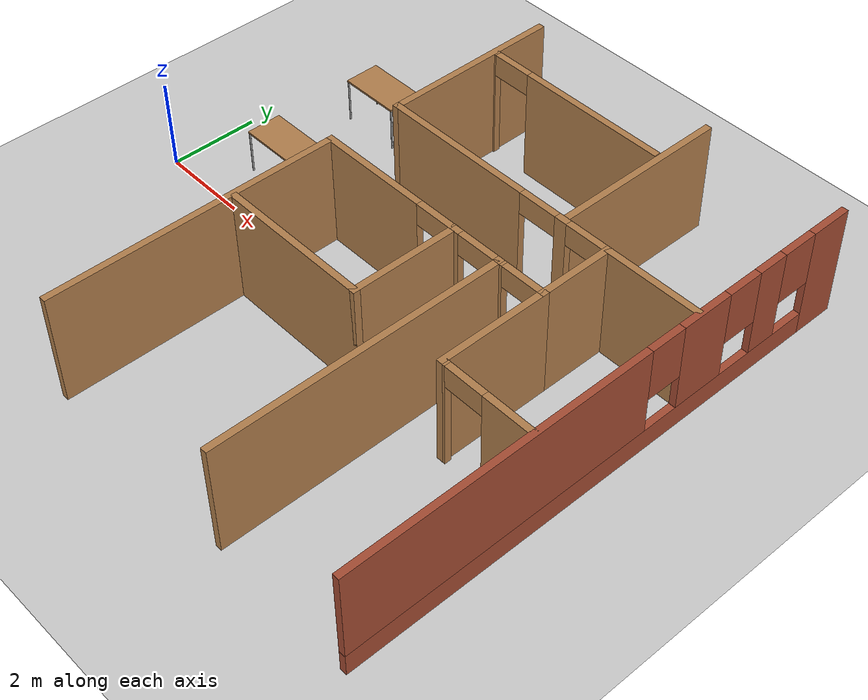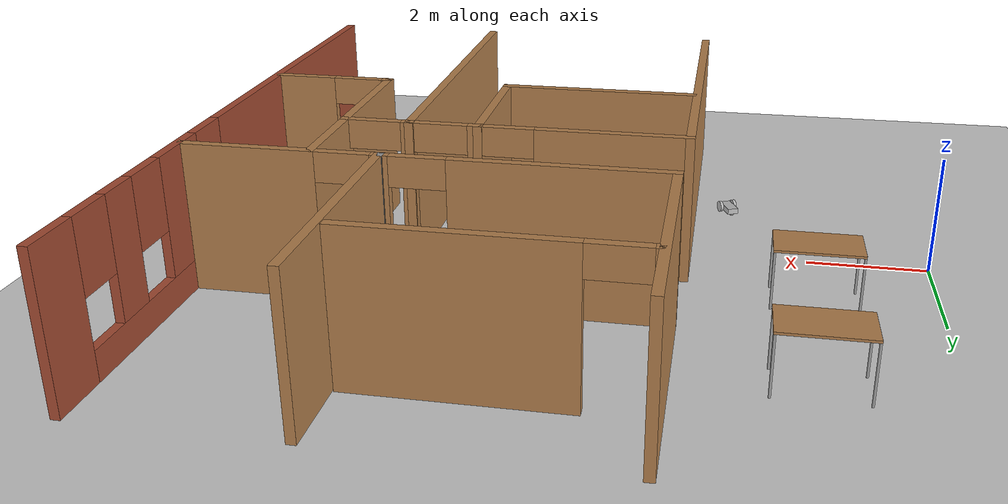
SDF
<sdf version="1.6">
 <world name="default">
  <model name="ground_plane">
   <static>1</static>
   <link name="link">
    <collision name="collision">
     <geometry><plane><normal>0 0 1</normal><size>100 100</size></plane></geometry>
     <surface><friction><ode><mu>100</mu><mu2>50</mu2></ode></friction></surface>
    </collision>
    <visual name="visual">
     <cast_shadows>0</cast_shadows>
     <geometry><plane><normal>0 0 1</normal><size>100 100</size></plane></geometry>
     <material>
      <script><uri>file://media/materials/scripts/gazebo.material</uri><name>Gazebo/Grey</name></script>
     </material>
    </visual>
   </link>
  </model>
  <model name="myhouse">
   <pose>-0.386417 0.578117 0 0 -0 0</pose>
   <link name="Wall_17">
    <collision name="Wall_17_Collision">
     <geometry><box><size>6.5 0.15 2.5</size></box></geometry>
     <pose>0 0 1.25 0 -0 0</pose>
    </collision>
    <visual name="Wall_17_Visual">
     <pose>0 0 1.25 0 -0 0</pose>
     <geometry><box><size>6.5 0.15 2.5</size></box></geometry>
     <material>
      <script><uri>file://media/materials/scripts/gazebo.material</uri><name>Gazebo/Wood</name></script>
      <ambient>1 1 1 1</ambient>
     </material>
    </visual>
    <pose>4.43449 -2.73253 0 0 -0 1.5708</pose>
   </link>
   <link name="Wall_18">
    <pose>6.73449 0.442468 0 0 -0 0</pose>
    <visual name="Wall_18_Visual_0">
     <pose>-1.08415 0 1.25 0 -0 0</pose>
     <geometry><box><size>2.58169 0.15 2.5</size></box></geometry>
     <material>
      <script><uri>file://media/materials/scripts/gazebo.material</uri><name>Gazebo/Wood</name></script>
      <ambient>1 1 1 1</ambient>
     </material>
    </visual>
    <collision name="Wall_18_Collision_0">
     <geometry><box><size>2.58169 0.15 2.5</size></box></geometry>
     <pose>-1.08415 0 1.25 0 -0 0</pose>
    </collision>
    <visual name="Wall_18_Visual_1">
     <pose>1.20982 0 1.25 0 -0 0</pose>
     <geometry><box><size>0.206246 0.15 2.5</size></box></geometry>
     <material>
      <script><uri>file://media/materials/scripts/gazebo.material</uri><name>Gazebo/Wood</name></script>
      <ambient>1 1 1 1</ambient>
     </material>
    </visual>
    <collision name="Wall_18_Collision_1">
     <geometry><box><size>0.206246 0.15 2.5</size></box></geometry>
     <pose>1.20982 0 1.25 0 -0 0</pose>
    </collision>
    <visual name="Wall_18_Visual_2">
     <pose>2.29397 0 1.25 0 -0 0</pose>
     <geometry><box><size>0.162059 0.15 2.5</size></box></geometry>
     <material>
      <script><uri>file://media/materials/scripts/gazebo.material</uri><name>Gazebo/Wood</name></script>
      <ambient>1 1 1 1</ambient>
     </material>
    </visual>
    <collision name="Wall_18_Collision_2">
     <geometry><box><size>0.162059 0.15 2.5</size></box></geometry>
     <pose>2.29397 0 1.25 0 -0 0</pose>
    </collision>
    <visual name="Wall_18_Visual_3">
     <pose>0.656695 0 2.25 0 -0 0</pose>
     <geometry><box><size>0.9 0.15 0.5</size></box></geometry>
     <material>
      <script><uri>file://media/materials/scripts/gazebo.material</uri><name>Gazebo/Wood</name></script>
      <ambient>1 1 1 1</ambient>
     </material>
    </visual>
    <collision name="Wall_18_Collision_3">
     <geometry><box><size>0.9 0.15 0.5</size></box></geometry>
     <pose>0.656695 0 2.25 0 -0 0</pose>
    </collision>
    <visual name="Wall_18_Visual_4">
     <pose>1.76294 0 2.25 0 -0 0</pose>
     <geometry><box><size>0.9 0.15 0.5</size></box></geometry>
     <material>
      <script><uri>file://media/materials/scripts/gazebo.material</uri><name>Gazebo/Wood</name></script>
      <ambient>1 1 1 1</ambient>
     </material>
    </visual>
    <collision name="Wall_18_Collision_4">
     <geometry><box><size>0.9 0.15 0.5</size></box></geometry>
     <pose>1.76294 0 2.25 0 -0 0</pose>
    </collision>
   </link>
   <link name="Wall_19">
    <collision name="Wall_19_Collision">
     <geometry><box><size>6.5 0.15 2.5</size></box></geometry>
     <pose>0 0 1.25 0 -0 0</pose>
    </collision>
    <visual name="Wall_19_Visual">
     <pose>0 0 1.25 0 -0 0</pose>
     <geometry><box><size>6.5 0.15 2.5</size></box></geometry>
     <material>
      <script><uri>file://media/materials/scripts/gazebo.material</uri><name>Gazebo/Wood</name></script>
      <ambient>1 1 1 1</ambient>
     </material>
    </visual>
    <pose>9.03449 -2.73253 0 0 0 -1.5708</pose>
   </link>
   <link name="Wall_21">
    <collision name="Wall_21_Collision">
     <geometry><box><size>2.5 0.15 2.5</size></box></geometry>
     <pose>0 0 1.25 0 -0 0</pose>
    </collision>
    <visual name="Wall_21_Visual">
     <pose>0 0 1.25 0 -0 0</pose>
     <geometry><box><size>2.5 0.15 2.5</size></box></geometry>
     <material>
      <script><uri>file://media/materials/scripts/gazebo.material</uri><name>Gazebo/Wood</name></script>
      <ambient>1 1 1 1</ambient>
     </material>
    </visual>
    <pose>7.87391 -0.726644 0 0 0 -1.5708</pose>
   </link>
   <link name="Wall_22">
    <collision name="Wall_22_Collision">
     <geometry><box><size>3.5 0.15 2.5</size></box></geometry>
     <pose>0 0 1.25 0 -0 0</pose>
    </collision>
    <visual name="Wall_22_Visual">
     <pose>0 0 1.25 0 -0 0</pose>
     <geometry><box><size>3.5 0.15 2.5</size></box></geometry>
     <material>
      <script><uri>file://media/materials/scripts/gazebo.material</uri><name>Gazebo/Wood</name></script>
      <ambient>1 1 1 1</ambient>
     </material>
    </visual>
    <pose>6.19891 -1.90164 0 0 -0 3.14159</pose>
   </link>
   <link name="Wall_24">
    <pose>9.58449 0.442468 0 0 -0 0</pose>
    <visual name="Wall_24_Visual_0">
     <pose>-0.51785 0 1.25 0 -0 0</pose>
     <geometry><box><size>0.214301 0.15 2.5</size></box></geometry>
     <material>
      <script><uri>file://media/materials/scripts/gazebo.material</uri><name>Gazebo/Wood</name></script>
      <ambient>1 1 1 1</ambient>
     </material>
    </visual>
    <collision name="Wall_24_Collision_0">
     <geometry><box><size>0.214301 0.15 2.5</size></box></geometry>
     <pose>-0.51785 0 1.25 0 -0 0</pose>
    </collision>
    <visual name="Wall_24_Visual_1">
     <pose>0.55715 0 1.25 0 -0 0</pose>
     <geometry><box><size>0.135699 0.15 2.5</size></box></geometry>
     <material>
      <script><uri>file://media/materials/scripts/gazebo.material</uri><name>Gazebo/Wood</name></script>
      <ambient>1 1 1 1</ambient>
     </material>
    </visual>
    <collision name="Wall_24_Collision_1">
     <geometry><box><size>0.135699 0.15 2.5</size></box></geometry>
     <pose>0.55715 0 1.25 0 -0 0</pose>
    </collision>
    <visual name="Wall_24_Visual_2">
     <pose>0.039301 0 2.25 0 -0 0</pose>
     <geometry><box><size>0.9 0.15 0.5</size></box></geometry>
     <material>
      <script><uri>file://media/materials/scripts/gazebo.material</uri><name>Gazebo/Wood</name></script>
      <ambient>1 1 1 1</ambient>
     </material>
    </visual>
    <collision name="Wall_24_Collision_2">
     <geometry><box><size>0.9 0.15 0.5</size></box></geometry>
     <pose>0.039301 0 2.25 0 -0 0</pose>
    </collision>
   </link>
   <link name="Wall_25">
    <collision name="Wall_25_Collision">
     <geometry><box><size>1.75 0.15 2.5</size></box></geometry>
     <pose>0 0 1.25 0 -0 0</pose>
    </collision>
    <visual name="Wall_25_Visual">
     <pose>0 0 1.25 0 -0 0</pose>
     <geometry><box><size>1.75 0.15 2.5</size></box></geometry>
     <material>
      <script><uri>file://media/materials/scripts/gazebo.material</uri><name>Gazebo/Wood</name></script>
      <ambient>1 1 1 1</ambient>
     </material>
    </visual>
    <pose>10.1345 1.24247 0 0 -0 1.5708</pose>
   </link>
   <link name="Wall_26">
    <collision name="Wall_26_Collision">
     <geometry><box><size>2.25 0.15 2.5</size></box></geometry>
     <pose>0 0 1.25 0 -0 0</pose>
    </collision>
    <visual name="Wall_26_Visual">
     <pose>0 0 1.25 0 -0 0</pose>
     <geometry><box><size>2.25 0.15 2.5</size></box></geometry>
     <material>
      <script><uri>file://media/materials/scripts/gazebo.material</uri><name>Gazebo/Wood</name></script>
      <ambient>1 1 1 1</ambient>
     </material>
    </visual>
    <pose>11.1845 2.04247 0 0 -0 0</pose>
   </link>
   <link name="Wall_28">
    <collision name="Wall_28_Collision">
     <geometry><box><size>2.5 0.15 2.5</size></box></geometry>
     <pose>0 0 1.25 0 -0 0</pose>
    </collision>
    <visual name="Wall_28_Visual">
     <pose>0 0 1.25 0 -0 0</pose>
     <geometry><box><size>2.5 0.15 2.5</size></box></geometry>
     <material>
      <script><uri>file://media/materials/scripts/gazebo.material</uri><name>Gazebo/Wood</name></script>
      <ambient>1 1 1 1</ambient>
     </material>
    </visual>
    <pose>10.1345 -0.732532 0 0 0 -1.5708</pose>
   </link>
   <link name="Wall_29">
    <pose>11.1845 -1.90753 0 0 -0 0</pose>
    <visual name="Wall_29_Visual_0">
     <pose>-1.02478 0 1.25 0 -0 0</pose>
     <geometry><box><size>0.200434 0.15 2.5</size></box></geometry>
     <material>
      <script><uri>file://media/materials/scripts/gazebo.material</uri><name>Gazebo/Wood</name></script>
      <ambient>1 1 1 1</ambient>
     </material>
    </visual>
    <collision name="Wall_29_Collision_0">
     <geometry><box><size>0.200434 0.15 2.5</size></box></geometry>
     <pose>-1.02478 0 1.25 0 -0 0</pose>
    </collision>
    <visual name="Wall_29_Visual_1">
     <pose>0.550217 0 1.25 0 -0 0</pose>
     <geometry><box><size>1.14957 0.15 2.5</size></box></geometry>
     <material>
      <script><uri>file://media/materials/scripts/gazebo.material</uri><name>Gazebo/Wood</name></script>
      <ambient>1 1 1 1</ambient>
     </material>
    </visual>
    <collision name="Wall_29_Collision_1">
     <geometry><box><size>1.14957 0.15 2.5</size></box></geometry>
     <pose>0.550217 0 1.25 0 -0 0</pose>
    </collision>
    <visual name="Wall_29_Visual_2">
     <pose>-0.474566 0 2.25 0 -0 0</pose>
     <geometry><box><size>0.9 0.15 0.5</size></box></geometry>
     <material>
      <script><uri>file://media/materials/scripts/gazebo.material</uri><name>Gazebo/Wood</name></script>
      <ambient>1 1 1 1</ambient>
     </material>
    </visual>
    <collision name="Wall_29_Collision_2">
     <geometry><box><size>0.9 0.15 0.5</size></box></geometry>
     <pose>-0.474566 0 2.25 0 -0 0</pose>
    </collision>
   </link>
   <link name="Wall_31">
    <pose>7.33449 2.04247 0 0 -0 3.14159</pose>
    <visual name="Wall_31_Visual_0">
     <pose>-2.80715 0 1.25 0 -0 0</pose>
     <geometry><box><size>0.135699 0.15 2.5</size></box></geometry>
     <material>
      <script><uri>file://media/materials/scripts/gazebo.material</uri><name>Gazebo/Wood</name></script>
      <ambient>1 1 1 1</ambient>
     </material>
    </visual>
    <collision name="Wall_31_Collision_0">
     <geometry><box><size>0.135699 0.15 2.5</size></box></geometry>
     <pose>-2.80715 0 1.25 0 -0 0</pose>
    </collision>
    <visual name="Wall_31_Visual_1">
     <pose>-1.69595 0 1.25 0 -0 0</pose>
     <geometry><box><size>0.286701 0.15 2.5</size></box></geometry>
     <material>
      <script><uri>file://media/materials/scripts/gazebo.material</uri><name>Gazebo/Wood</name></script>
      <ambient>1 1 1 1</ambient>
     </material>
    </visual>
    <collision name="Wall_31_Collision_1">
     <geometry><box><size>0.286701 0.15 2.5</size></box></geometry>
     <pose>-1.69595 0 1.25 0 -0 0</pose>
    </collision>
    <visual name="Wall_31_Visual_2">
     <pose>1.1112 0 1.25 0 -0 0</pose>
     <geometry><box><size>3.5276 0.15 2.5</size></box></geometry>
     <material>
      <script><uri>file://media/materials/scripts/gazebo.material</uri><name>Gazebo/Wood</name></script>
      <ambient>1 1 1 1</ambient>
     </material>
    </visual>
    <collision name="Wall_31_Collision_2">
     <geometry><box><size>3.5276 0.15 2.5</size></box></geometry>
     <pose>1.1112 0 1.25 0 -0 0</pose>
    </collision>
    <visual name="Wall_31_Visual_3">
     <pose>-2.2893 0 2.25 0 -0 0</pose>
     <geometry><box><size>0.9 0.15 0.5</size></box></geometry>
     <material>
      <script><uri>file://media/materials/scripts/gazebo.material</uri><name>Gazebo/Wood</name></script>
      <ambient>1 1 1 1</ambient>
     </material>
    </visual>
    <collision name="Wall_31_Collision_3">
     <geometry><box><size>0.9 0.15 0.5</size></box></geometry>
     <pose>-2.2893 0 2.25 0 -0 0</pose>
    </collision>
    <visual name="Wall_31_Visual_4">
     <pose>-1.1026 0 2.25 0 -0 0</pose>
     <geometry><box><size>0.9 0.15 0.5</size></box></geometry>
     <material>
      <script><uri>file://media/materials/scripts/gazebo.material</uri><name>Gazebo/Wood</name></script>
      <ambient>1 1 1 1</ambient>
     </material>
    </visual>
    <collision name="Wall_31_Collision_4">
     <geometry><box><size>0.9 0.15 0.5</size></box></geometry>
     <pose>-1.1026 0 2.25 0 -0 0</pose>
    </collision>
   </link>
   <link name="Wall_32">
    <collision name="Wall_32_Collision">
     <geometry><box><size>4 0.15 2.5</size></box></geometry>
     <pose>0 0 1.25 0 -0 0</pose>
    </collision>
    <visual name="Wall_32_Visual">
     <pose>0 0 1.25 0 -0 0</pose>
     <geometry><box><size>4 0.15 2.5</size></box></geometry>
     <material>
      <script><uri>file://media/materials/scripts/gazebo.material</uri><name>Gazebo/Wood</name></script>
      <ambient>1 1 1 1</ambient>
     </material>
    </visual>
    <pose>4.53449 3.96747 0 0 -0 1.5708</pose>
   </link>
   <link name="Wall_34">
    <collision name="Wall_34_Collision">
     <geometry><box><size>0.16 0.15 2.5</size></box></geometry>
     <pose>0 0 1.25 0 -0 0</pose>
    </collision>
    <visual name="Wall_34_Visual">
     <pose>0 0 1.25 0 -0 0</pose>
     <geometry><box><size>0.16 0.15 2.5</size></box></geometry>
     <material>
      <script><uri>file://media/materials/scripts/gazebo.material</uri><name>Gazebo/Grey</name></script>
      <ambient>1 1 1 1</ambient>
     </material>
    </visual>
    <pose>9.0455 2.05744 0 0 -0 0</pose>
   </link>
   <link name="Wall_35">
    <collision name="Wall_35_Collision">
     <geometry><box><size>4 0.15 2.5</size></box></geometry>
     <pose>0 0 1.25 0 -0 0</pose>
    </collision>
    <visual name="Wall_35_Visual">
     <pose>0 0 1.25 0 -0 0</pose>
     <geometry><box><size>4 0.15 2.5</size></box></geometry>
     <material>
      <script><uri>file://media/materials/scripts/gazebo.material</uri><name>Gazebo/Wood</name></script>
      <ambient>1 1 1 1</ambient>
     </material>
    </visual>
    <pose>9.0505 3.98244 0 0 -0 1.5708</pose>
   </link>
   <link name="Wall_37">
    <pose>6.71006 4.63198 0 0 -0 0</pose>
    <visual name="Wall_37_Visual_0">
     <pose>-2.15591 0 1.25 0 -0 0</pose>
     <geometry><box><size>0.18818 0.15 2.5</size></box></geometry>
     <material>
      <script><uri>file://media/materials/scripts/gazebo.material</uri><name>Gazebo/Wood</name></script>
      <ambient>1 1 1 1</ambient>
     </material>
    </visual>
    <collision name="Wall_37_Collision_0">
     <geometry><box><size>0.18818 0.15 2.5</size></box></geometry>
     <pose>-2.15591 0 1.25 0 -0 0</pose>
    </collision>
    <visual name="Wall_37_Visual_1">
     <pose>0.54409 0 1.25 0 -0 0</pose>
     <geometry><box><size>3.41182 0.15 2.5</size></box></geometry>
     <material>
      <script><uri>file://media/materials/scripts/gazebo.material</uri><name>Gazebo/Wood</name></script>
      <ambient>1 1 1 1</ambient>
     </material>
    </visual>
    <collision name="Wall_37_Collision_1">
     <geometry><box><size>3.41182 0.15 2.5</size></box></geometry>
     <pose>0.54409 0 1.25 0 -0 0</pose>
    </collision>
    <visual name="Wall_37_Visual_2">
     <pose>-1.61182 0 2.25 0 -0 0</pose>
     <geometry><box><size>0.9 0.15 0.5</size></box></geometry>
     <material>
      <script><uri>file://media/materials/scripts/gazebo.material</uri><name>Gazebo/Wood</name></script>
      <ambient>1 1 1 1</ambient>
     </material>
    </visual>
    <collision name="Wall_37_Collision_2">
     <geometry><box><size>0.9 0.15 0.5</size></box></geometry>
     <pose>-1.61182 0 2.25 0 -0 0</pose>
    </collision>
   </link>
   <link name="Wall_8">
    <pose>12.3 -0.005752 0 0 0 -1.5708</pose>
    <visual name="Wall_8_Visual_0">
     <pose>-5.52892 0 1.25 0 -0 0</pose>
     <geometry><box><size>0.942155 0.15 2.5</size></box></geometry>
     <material>
      <script><uri>file://media/materials/scripts/gazebo.material</uri><name>Gazebo/Bricks</name></script>
      <ambient>1 1 1 1</ambient>
     </material>
    </visual>
    <collision name="Wall_8_Collision_0">
     <geometry><box><size>0.942155 0.15 2.5</size></box></geometry>
     <pose>-5.52892 0 1.25 0 -0 0</pose>
    </collision>
    <visual name="Wall_8_Visual_1">
     <pose>0.471077 0 0.25 0 -0 0</pose>
     <geometry><box><size>11.0578 0.15 0.5</size></box></geometry>
     <material>
      <script><uri>file://media/materials/scripts/gazebo.material</uri><name>Gazebo/Bricks</name></script>
      <ambient>1 1 1 1</ambient>
     </material>
    </visual>
    <collision name="Wall_8_Collision_1">
     <geometry><box><size>11.0578 0.15 0.5</size></box></geometry>
     <pose>0.471077 0 0.25 0 -0 0</pose>
    </collision>
    <visual name="Wall_8_Visual_2">
     <pose>-3.91364 0 1.5 0 -0 0</pose>
     <geometry><box><size>0.688405 0.15 2</size></box></geometry>
     <material>
      <script><uri>file://media/materials/scripts/gazebo.material</uri><name>Gazebo/Bricks</name></script>
      <ambient>1 1 1 1</ambient>
     </material>
    </visual>
    <collision name="Wall_8_Collision_2">
     <geometry><box><size>0.688405 0.15 2</size></box></geometry>
     <pose>-3.91364 0 1.5 0 -0 0</pose>
    </collision>
    <visual name="Wall_8_Visual_3">
     <pose>-2.18388 0 1.5 0 -0 0</pose>
     <geometry><box><size>1.17113 0.15 2</size></box></geometry>
     <material>
      <script><uri>file://media/materials/scripts/gazebo.material</uri><name>Gazebo/Bricks</name></script>
      <ambient>1 1 1 1</ambient>
     </material>
    </visual>
    <collision name="Wall_8_Collision_3">
     <geometry><box><size>1.17113 0.15 2</size></box></geometry>
     <pose>-2.18388 0 1.5 0 -0 0</pose>
    </collision>
    <visual name="Wall_8_Visual_4">
     <pose>2.60085 0 1.5 0 -0 0</pose>
     <geometry><box><size>6.79831 0.15 2</size></box></geometry>
     <material>
      <script><uri>file://media/materials/scripts/gazebo.material</uri><name>Gazebo/Bricks</name></script>
      <ambient>1 1 1 1</ambient>
     </material>
    </visual>
    <collision name="Wall_8_Collision_4">
     <geometry><box><size>6.79831 0.15 2</size></box></geometry>
     <pose>2.60085 0 1.5 0 -0 0</pose>
    </collision>
    <visual name="Wall_8_Visual_5">
     <pose>-4.65785 0 1.9 0 -0 0</pose>
     <geometry><box><size>0.8 0.15 1.2</size></box></geometry>
     <material>
      <script><uri>file://media/materials/scripts/gazebo.material</uri><name>Gazebo/Bricks</name></script>
      <ambient>1 1 1 1</ambient>
     </material>
    </visual>
    <collision name="Wall_8_Collision_5">
     <geometry><box><size>0.8 0.15 1.2</size></box></geometry>
     <pose>-4.65785 0 1.9 0 -0 0</pose>
    </collision>
    <visual name="Wall_8_Visual_6">
     <pose>-3.16944 0 1.9 0 -0 0</pose>
     <geometry><box><size>0.8 0.15 1.2</size></box></geometry>
     <material>
      <script><uri>file://media/materials/scripts/gazebo.material</uri><name>Gazebo/Bricks</name></script>
      <ambient>1 1 1 1</ambient>
     </material>
    </visual>
    <collision name="Wall_8_Collision_6">
     <geometry><box><size>0.8 0.15 1.2</size></box></geometry>
     <pose>-3.16944 0 1.9 0 -0 0</pose>
    </collision>
    <visual name="Wall_8_Visual_7">
     <pose>-1.19831 0 1.9 0 -0 0</pose>
     <geometry><box><size>0.8 0.15 1.2</size></box></geometry>
     <material>
      <script><uri>file://media/materials/scripts/gazebo.material</uri><name>Gazebo/Bricks</name></script>
      <ambient>1 1 1 1</ambient>
     </material>
    </visual>
    <collision name="Wall_8_Collision_7">
     <geometry><box><size>0.8 0.15 1.2</size></box></geometry>
     <pose>-1.19831 0 1.9 0 -0 0</pose>
    </collision>
   </link>
   <static>1</static>
  </model>
  <model name="table">
   <static>0</static>
   <link name="link">
    <collision name="surface">
     <pose>0 0 1 0 -0 0</pose>
     <geometry><box><size>1.5 0.8 0.03</size></box></geometry>
     <surface><friction><ode><mu>0.6</mu><mu2>0.6</mu2></ode></friction></surface>
    </collision>
    <visual name="visual1">
     <pose>0 0 1 0 -0 0</pose>
     <geometry><box><size>1.4 0.8 0.04</size></box></geometry>
     <material>
      <script><uri>file://media/materials/scripts/gazebo.material</uri><name>Gazebo/Wood</name></script>
     </material>
    </visual>
    <collision name="front_left_leg">
     <pose>0.68 0.38 0.5 0 -0 0</pose>
     <geometry><cylinder><radius>0.02</radius><length>1</length></cylinder></geometry>
    </collision>
    <visual name="front_left_leg">
     <pose>0.68 0.38 0.5 0 -0 0</pose>
     <geometry><cylinder><radius>0.02</radius><length>1</length></cylinder></geometry>
     <material>
      <script><uri>file://media/materials/scripts/gazebo.material</uri><name>Gazebo/Grey</name></script>
     </material>
    </visual>
    <collision name="front_right_leg">
     <pose>0.68 -0.38 0.5 0 -0 0</pose>
     <geometry><cylinder><radius>0.02</radius><length>1</length></cylinder></geometry>
    </collision>
    <visual name="front_right_leg">
     <pose>0.68 -0.38 0.5 0 -0 0</pose>
     <geometry><cylinder><radius>0.02</radius><length>1</length></cylinder></geometry>
     <material>
      <script><uri>file://media/materials/scripts/gazebo.material</uri><name>Gazebo/Grey</name></script>
     </material>
    </visual>
    <collision name="back_right_leg">
     <pose>-0.68 -0.38 0.5 0 -0 0</pose>
     <geometry><cylinder><radius>0.02</radius><length>1</length></cylinder></geometry>
    </collision>
    <visual name="back_right_leg">
     <pose>-0.68 -0.38 0.5 0 -0 0</pose>
     <geometry><cylinder><radius>0.02</radius><length>1</length></cylinder></geometry>
     <material>
      <script><uri>file://media/materials/scripts/gazebo.material</uri><name>Gazebo/Grey</name></script>
     </material>
    </visual>
    <collision name="back_left_leg">
     <pose>-0.68 0.38 0.5 0 -0 0</pose>
     <geometry><cylinder><radius>0.02</radius><length>1</length></cylinder></geometry>
    </collision>
    <visual name="back_left_leg">
     <pose>-0.68 0.38 0.5 0 -0 0</pose>
     <geometry><cylinder><radius>0.02</radius><length>1</length></cylinder></geometry>
     <material>
      <script><uri>file://media/materials/scripts/gazebo.material</uri><name>Gazebo/Grey</name></script>
     </material>
    </visual>
    <inertial>
     <inertia><ixx>1</ixx><ixy>0</ixy><ixz>0</ixz><iyy>1</iyy><iyz>0</iyz><izz>1</izz></inertia>
     <mass>1</mass>
    </inertial>
   </link>
   <pose>2.02572 4.02502 -1e-06 1e-06 -0 0</pose>
  </model>
  <model name="table_0">
   <static>0</static>
   <link name="link">
    <collision name="surface">
     <pose>0 0 1 0 -0 0</pose>
     <geometry><box><size>1.5 0.8 0.03</size></box></geometry>
     <surface><friction><ode><mu>0.6</mu><mu2>0.6</mu2></ode></friction></surface>
    </collision>
    <visual name="visual1">
     <pose>0 0 1 0 -0 0</pose>
     <geometry><box><size>1.4 0.8 0.04</size></box></geometry>
     <material>
      <script><uri>file://media/materials/scripts/gazebo.material</uri><name>Gazebo/Wood</name></script>
     </material>
    </visual>
    <collision name="front_left_leg">
     <pose>0.68 0.38 0.5 0 -0 0</pose>
     <geometry><cylinder><radius>0.02</radius><length>1</length></cylinder></geometry>
    </collision>
    <visual name="front_left_leg">
     <pose>0.68 0.38 0.5 0 -0 0</pose>
     <geometry><cylinder><radius>0.02</radius><length>1</length></cylinder></geometry>
     <material>
      <script><uri>file://media/materials/scripts/gazebo.material</uri><name>Gazebo/Grey</name></script>
     </material>
    </visual>
    <collision name="front_right_leg">
     <pose>0.68 -0.38 0.5 0 -0 0</pose>
     <geometry><cylinder><radius>0.02</radius><length>1</length></cylinder></geometry>
    </collision>
    <visual name="front_right_leg">
     <pose>0.68 -0.38 0.5 0 -0 0</pose>
     <geometry><cylinder><radius>0.02</radius><length>1</length></cylinder></geometry>
     <material>
      <script><uri>file://media/materials/scripts/gazebo.material</uri><name>Gazebo/Grey</name></script>
     </material>
    </visual>
    <collision name="back_right_leg">
     <pose>-0.68 -0.38 0.5 0 -0 0</pose>
     <geometry><cylinder><radius>0.02</radius><length>1</length></cylinder></geometry>
    </collision>
    <visual name="back_right_leg">
     <pose>-0.68 -0.38 0.5 0 -0 0</pose>
     <geometry><cylinder><radius>0.02</radius><length>1</length></cylinder></geometry>
     <material>
      <script><uri>file://media/materials/scripts/gazebo.material</uri><name>Gazebo/Grey</name></script>
     </material>
    </visual>
    <collision name="back_left_leg">
     <pose>-0.68 0.38 0.5 0 -0 0</pose>
     <geometry><cylinder><radius>0.02</radius><length>1</length></cylinder></geometry>
    </collision>
    <visual name="back_left_leg">
     <pose>-0.68 0.38 0.5 0 -0 0</pose>
     <geometry><cylinder><radius>0.02</radius><length>1</length></cylinder></geometry>
     <material>
      <script><uri>file://media/materials/scripts/gazebo.material</uri><name>Gazebo/Grey</name></script>
     </material>
    </visual>
    <inertial>
     <inertia><ixx>1</ixx><ixy>0</ixy><ixz>0</ixz><iyy>1</iyy><iyz>0</iyz><izz>1</izz></inertia>
     <mass>1</mass>
    </inertial>
   </link>
   <pose>1.9702 1.42385 -9e-06 0 -1e-06 0</pose>
  </model>
  <model name="myturtle">
   <link name="chassis">
    <pose>0 0 0.1 0 -0 0</pose>
    <inertial>
     <inertia><ixx>1</ixx><ixy>0</ixy><ixz>0</ixz><iyy>1</iyy><iyz>0</iyz><izz>1</izz></inertia>
     <mass>1</mass>
    </inertial>
    <visual name="visual"><geometry><box><size>0.4 0.2 0.1</size></box></geometry></visual>
    <visual name="caster_visual">
     <pose>-0.15 0 -0.05 0 -0 0</pose>
     <geometry><sphere><radius>0.05</radius></sphere></geometry>
    </visual>
    <collision name="collision">
     <geometry><box><size>0.4 0.2 0.1</size></box></geometry>
     <surface>
      <friction>
       <ode><mu>1</mu><mu2>1</mu2><fdir1>0 0 0</fdir1><slip1>0</slip1><slip2>0</slip2></ode>
       <torsional>
        <coefficient>1</coefficient>
        <patch_radius>0</patch_radius>
        <surface_radius>0</surface_radius>
        <use_patch_radius>1</use_patch_radius>
        <ode><slip>0</slip></ode>
       </torsional>
      </friction>
      <bounce><restitution_coefficient>0</restitution_coefficient><threshold>1e+06</threshold></bounce>
      <contact>
       <collide_without_contact>0</collide_without_contact>
       <collide_without_contact_bitmask>1</collide_without_contact_bitmask>
       <collide_bitmask>1</collide_bitmask>
       <ode>
        <soft_cfm>0</soft_cfm>
        <soft_erp>0.2</soft_erp>
        <kp>1e+13</kp>
        <kd>1</kd>
        <max_vel>0.01</max_vel>
        <min_depth>0</min_depth>
       </ode>
       <bullet>
        <split_impulse>1</split_impulse>
        <split_impulse_penetration_threshold>-0.01</split_impulse_penetration_threshold>
        <soft_cfm>0</soft_cfm>
        <soft_erp>0.2</soft_erp>
        <kp>1e+13</kp>
        <kd>1</kd>
       </bullet>
      </contact>
     </surface>
    </collision>
    <collision name="caster_collision">
     <pose>-0.15 0 -0.05 0 -0 0</pose>
     <geometry><sphere><radius>0.05</radius></sphere></geometry>
     <surface>
      <friction>
       <ode><mu>0</mu><mu2>0</mu2><fdir1>0 0 0</fdir1><slip1>1</slip1><slip2>1</slip2></ode>
       <torsional>
        <coefficient>1</coefficient>
        <patch_radius>0</patch_radius>
        <surface_radius>0</surface_radius>
        <use_patch_radius>1</use_patch_radius>
        <ode><slip>0</slip></ode>
       </torsional>
      </friction>
      <bounce><restitution_coefficient>0</restitution_coefficient><threshold>1e+06</threshold></bounce>
      <contact>
       <collide_without_contact>0</collide_without_contact>
       <collide_without_contact_bitmask>1</collide_without_contact_bitmask>
       <collide_bitmask>1</collide_bitmask>
       <ode>
        <soft_cfm>0</soft_cfm>
        <soft_erp>0.2</soft_erp>
        <kp>1e+13</kp>
        <kd>1</kd>
        <max_vel>0.01</max_vel>
        <min_depth>0</min_depth>
       </ode>
       <bullet>
        <split_impulse>1</split_impulse>
        <split_impulse_penetration_threshold>-0.01</split_impulse_penetration_threshold>
        <soft_cfm>0</soft_cfm>
        <soft_erp>0.2</soft_erp>
        <kp>1e+13</kp>
        <kd>1</kd>
       </bullet>
      </contact>
     </surface>
    </collision>
   </link>
   <link name="left_wheel">
    <pose>0.1 0.13 0.1 0.000712 1.5707 1.57141</pose>
    <inertial>
     <inertia><ixx>1</ixx><ixy>0</ixy><ixz>0</ixz><iyy>1</iyy><iyz>0</iyz><izz>1</izz></inertia>
     <mass>1</mass>
    </inertial>
    <visual name="visual">
     <geometry><cylinder><radius>0.1</radius><length>0.05</length></cylinder></geometry>
    </visual>
    <collision name="collision">
     <geometry><cylinder><radius>0.1</radius><length>0.05</length></cylinder></geometry>
     <surface>
      <friction>
       <ode><mu>1</mu><mu2>1</mu2><fdir1>0 0 0</fdir1><slip1>0</slip1><slip2>0</slip2></ode>
       <torsional>
        <coefficient>1</coefficient>
        <patch_radius>0</patch_radius>
        <surface_radius>0</surface_radius>
        <use_patch_radius>1</use_patch_radius>
        <ode><slip>0</slip></ode>
       </torsional>
      </friction>
      <bounce><restitution_coefficient>0</restitution_coefficient><threshold>1e+06</threshold></bounce>
      <contact>
       <collide_without_contact>0</collide_without_contact>
       <collide_without_contact_bitmask>1</collide_without_contact_bitmask>
       <collide_bitmask>1</collide_bitmask>
       <ode>
        <soft_cfm>0</soft_cfm>
        <soft_erp>0.2</soft_erp>
        <kp>1e+13</kp>
        <kd>1</kd>
        <max_vel>0.01</max_vel>
        <min_depth>0</min_depth>
       </ode>
       <bullet>
        <split_impulse>1</split_impulse>
        <split_impulse_penetration_threshold>-0.01</split_impulse_penetration_threshold>
        <soft_cfm>0</soft_cfm>
        <soft_erp>0.2</soft_erp>
        <kp>1e+13</kp>
        <kd>1</kd>
       </bullet>
      </contact>
     </surface>
    </collision>
   </link>
   <link name="right_wheel">
    <pose>0.1 -0.13 0.1 0.000712 1.5707 1.57141</pose>
    <inertial>
     <inertia><ixx>1</ixx><ixy>0</ixy><ixz>0</ixz><iyy>1</iyy><iyz>0</iyz><izz>1</izz></inertia>
     <mass>1</mass>
    </inertial>
    <visual name="visual">
     <geometry><cylinder><radius>0.1</radius><length>0.05</length></cylinder></geometry>
    </visual>
    <collision name="collision">
     <geometry><cylinder><radius>0.1</radius><length>0.05</length></cylinder></geometry>
     <surface>
      <friction>
       <ode><mu>1</mu><mu2>1</mu2><fdir1>0 0 0</fdir1><slip1>0</slip1><slip2>0</slip2></ode>
       <torsional>
        <coefficient>1</coefficient>
        <patch_radius>0</patch_radius>
        <surface_radius>0</surface_radius>
        <use_patch_radius>1</use_patch_radius>
        <ode><slip>0</slip></ode>
       </torsional>
      </friction>
      <bounce><restitution_coefficient>0</restitution_coefficient><threshold>1e+06</threshold></bounce>
      <contact>
       <collide_without_contact>0</collide_without_contact>
       <collide_without_contact_bitmask>1</collide_without_contact_bitmask>
       <collide_bitmask>1</collide_bitmask>
       <ode>
        <soft_cfm>0</soft_cfm>
        <soft_erp>0.2</soft_erp>
        <kp>1e+13</kp>
        <kd>1</kd>
        <max_vel>0.01</max_vel>
        <min_depth>0</min_depth>
       </ode>
       <bullet>
        <split_impulse>1</split_impulse>
        <split_impulse_penetration_threshold>-0.01</split_impulse_penetration_threshold>
        <soft_cfm>0</soft_cfm>
        <soft_erp>0.2</soft_erp>
        <kp>1e+13</kp>
        <kd>1</kd>
       </bullet>
      </contact>
     </surface>
    </collision>
   </link>
   <joint name="left_wheel_hinge" type="revolute">
    <parent>chassis</parent>
    <child>left_wheel</child>
    <pose>0 0 -0.03 0 -0 0</pose>
    <axis>
     <xyz>0 0 1</xyz>
     <use_parent_model_frame>0</use_parent_model_frame>
     <limit><lower>-1e+16</lower><upper>1e+16</upper><effort>-1</effort><velocity>-1</velocity></limit>
     <dynamics>
      <spring_reference>0</spring_reference>
      <spring_stiffness>0</spring_stiffness>
      <damping>0</damping>
      <friction>0</friction>
     </dynamics>
    </axis>
    <physics>
     <ode><limit><cfm>0</cfm><erp>0.2</erp></limit><suspension><cfm>0</cfm><erp>0.2</erp></suspension></ode>
    </physics>
   </joint>
   <joint name="right_wheel_hinge" type="revolute">
    <parent>chassis</parent>
    <child>right_wheel</child>
    <pose>0 0 0.03 0 -0 0</pose>
    <axis>
     <xyz>0 0 1</xyz>
     <use_parent_model_frame>0</use_parent_model_frame>
     <limit><lower>-1e+16</lower><upper>1e+16</upper><effort>-1</effort><velocity>-1</velocity></limit>
     <dynamics>
      <spring_reference>0</spring_reference>
      <spring_stiffness>0</spring_stiffness>
      <damping>0</damping>
      <friction>0</friction>
     </dynamics>
    </axis>
    <physics>
     <ode><limit><cfm>0</cfm><erp>0.2</erp></limit><suspension><cfm>0</cfm><erp>0.2</erp></suspension></ode>
    </physics>
   </joint>
   <static>0</static>
   <pose>3.36287 -2.02068 1e-06 -2e-06 -6e-06 -1.13816</pose>
  </model>
 </world>
</sdf>
